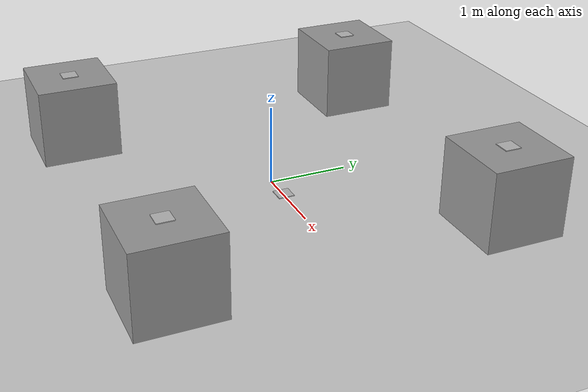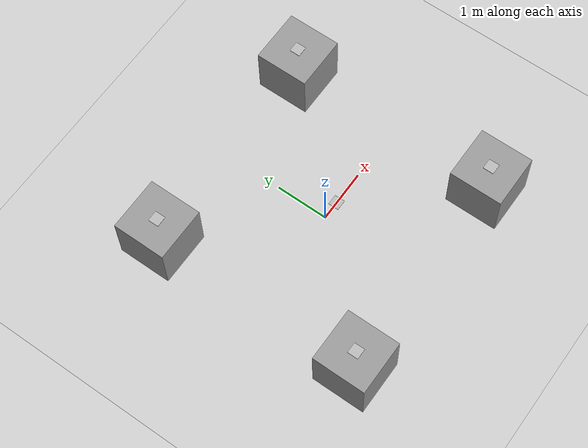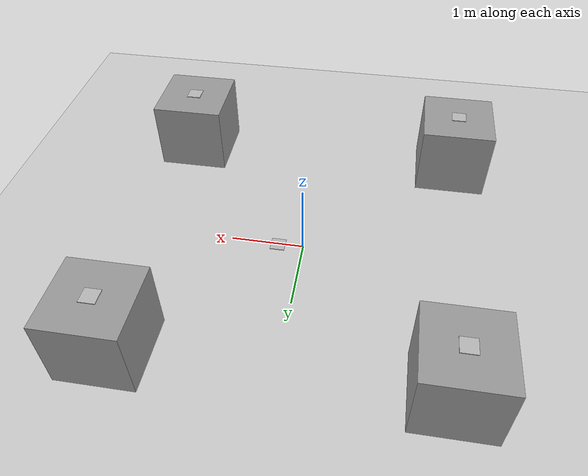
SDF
<sdf version="1.6">
 <world name="default">
  <light name="sun" type="directional">
   <pose>0 0 10 0 -0 0</pose>
   <diffuse>0.8 0.8 0.8 1</diffuse>
   <specular>0.1 0.1 0.1 1</specular>
   <attenuation>
    <range>1000</range>
    <constant>0.9</constant>
    <linear>0.01</linear>
    <quadratic>0.001</quadratic>
   </attenuation>
   <direction>-0.5 0.5 -1</direction>
  </light>
  <model name="ground_plane">
   <static>1</static>
   <link name="link">
    <collision name="collision">
     <geometry><plane><normal>0 0 1</normal><size>100 100</size></plane></geometry>
     <surface><friction><ode><mu>100</mu><mu2>50</mu2></ode></friction></surface>
    </collision>
    <visual name="visual">
     <cast_shadows>0</cast_shadows>
     <geometry><plane><normal>0 0 1</normal><size>100 100</size></plane></geometry>
     <material>
      <script><uri>file://media/materials/scripts/gazebo.material</uri><name>Gazebo/Grey</name></script>
     </material>
    </visual>
   </link>
  </model>
  <gravity>0 0 -9.8</gravity>
  <magnetic_field>6e-06 2.3e-05 -4.2e-05</magnetic_field>
  <atmosphere type="adiabatic"/>
  <physics name="default_physics" default="0" type="ode">
   <max_step_size>0.001</max_step_size>
   <real_time_factor>1</real_time_factor>
   <real_time_update_rate>1000</real_time_update_rate>
  </physics>
  <scene><ambient>0.4 0.4 0.4 1</ambient><background>0.7 0.7 0.7 1</background><shadows>1</shadows></scene>
  <spherical_coordinates>
   <surface_model>EARTH_WGS84</surface_model>
   <latitude_deg>0</latitude_deg>
   <longitude_deg>0</longitude_deg>
   <elevation>0</elevation>
   <heading_deg>0</heading_deg>
  </spherical_coordinates>
  <model name="unit_box_0">
   <pose>2 1.99999 0.499995 0 1e-05 0</pose>
   <link name="link">
    <inertial>
     <mass>1</mass>
     <inertia>
      <ixx>0.166667</ixx>
      <ixy>0</ixy>
      <ixz>0</ixz>
      <iyy>0.166667</iyy>
      <iyz>0</iyz>
      <izz>0.166667</izz>
     </inertia>
    </inertial>
    <collision name="collision"><geometry><box><size>1 1 1</size></box></geometry></collision>
    <visual name="visual">
     <geometry><box><size>1 1 1</size></box></geometry>
     <material>
      <script><name>Gazebo/Grey</name><uri>file://media/materials/scripts/gazebo.material</uri></script>
     </material>
    </visual>
   </link>
  </model>
  <model name="unit_box_1">
   <pose>1.99999 -2 0.499995 1e-05 -0 0</pose>
   <link name="link">
    <inertial>
     <mass>1</mass>
     <inertia>
      <ixx>0.166667</ixx>
      <ixy>0</ixy>
      <ixz>0</ixz>
      <iyy>0.166667</iyy>
      <iyz>0</iyz>
      <izz>0.166667</izz>
     </inertia>
    </inertial>
    <collision name="collision"><geometry><box><size>1 1 1</size></box></geometry></collision>
    <visual name="visual">
     <geometry><box><size>1 1 1</size></box></geometry>
     <material>
      <script><name>Gazebo/Grey</name><uri>file://media/materials/scripts/gazebo.material</uri></script>
     </material>
    </visual>
   </link>
  </model>
  <model name="unit_box_2">
   <pose>-1.99999 -1.99999 0.499995 0 1e-05 0</pose>
   <link name="link">
    <inertial>
     <mass>1</mass>
     <inertia>
      <ixx>0.166667</ixx>
      <ixy>0</ixy>
      <ixz>0</ixz>
      <iyy>0.166667</iyy>
      <iyz>0</iyz>
      <izz>0.166667</izz>
     </inertia>
    </inertial>
    <collision name="collision"><geometry><box><size>1 1 1</size></box></geometry></collision>
    <visual name="visual">
     <geometry><box><size>1 1 1</size></box></geometry>
     <material>
      <script><name>Gazebo/Grey</name><uri>file://media/materials/scripts/gazebo.material</uri></script>
     </material>
    </visual>
   </link>
  </model>
  <model name="unit_box_3">
   <pose>-2 1.99999 0.5 0 -0 0</pose>
   <link name="link">
    <inertial>
     <mass>1</mass>
     <inertia>
      <ixx>0.166667</ixx>
      <ixy>0</ixy>
      <ixz>0</ixz>
      <iyy>0.166667</iyy>
      <iyz>0</iyz>
      <izz>0.166667</izz>
     </inertia>
    </inertial>
    <collision name="collision"><geometry><box><size>1 1 1</size></box></geometry></collision>
    <visual name="visual">
     <geometry><box><size>1 1 1</size></box></geometry>
     <material>
      <script><name>Gazebo/Grey</name><uri>file://media/materials/scripts/gazebo.material</uri></script>
     </material>
    </visual>
   </link>
  </model>
  <model name="APtag0">
   <pose>0.349297 0.010571 0.005 0 -0 0</pose>
   <link name="box">
    <collision name="collision"><geometry><box><size>0.2 0.2 0.02</size></box></geometry></collision>
    <visual name="visual">
     <geometry><box><size>0.2 0.2 0.01</size></box></geometry>
     <material>
      <script>
       <uri>model://APtag0/materials/scripts</uri>
       <uri>model://APtag0/materials/textures</uri>
       <name>APtag0/tag0</name>
      </script>
     </material>
    </visual>
    <inertial>
     <inertia><ixx>1</ixx><ixy>0</ixy><ixz>0</ixz><iyy>1</iyy><iyz>0</iyz><izz>1</izz></inertia>
     <mass>1</mass>
    </inertial>
   </link>
  </model>
  <model name="APtag0_0">
   <pose>2 2 1.005 0 -0 0</pose>
   <link name="box">
    <collision name="collision"><geometry><box><size>0.2 0.2 0.02</size></box></geometry></collision>
    <visual name="visual">
     <geometry><box><size>0.2 0.2 0.01</size></box></geometry>
     <material>
      <script>
       <uri>model://APtag0/materials/scripts</uri>
       <uri>model://APtag0/materials/textures</uri>
       <name>APtag0/tag0</name>
      </script>
     </material>
    </visual>
    <inertial>
     <inertia><ixx>1</ixx><ixy>0</ixy><ixz>0</ixz><iyy>1</iyy><iyz>0</iyz><izz>1</izz></inertia>
     <mass>1</mass>
    </inertial>
   </link>
  </model>
  <model name="APtag1_0">
   <pose>2 -2 1.005 0 -0 0</pose>
   <link name="box">
    <collision name="collision"><geometry><box><size>0.2 0.2 0.02</size></box></geometry></collision>
    <visual name="visual">
     <geometry><box><size>0.2 0.2 0.01</size></box></geometry>
     <material>
      <script>
       <uri>model://APtag1/materials/scripts</uri>
       <uri>model://APtag1/materials/textures</uri>
       <name>APtag1/tag1</name>
      </script>
     </material>
    </visual>
    <inertial>
     <inertia><ixx>1</ixx><ixy>0</ixy><ixz>0</ixz><iyy>1</iyy><iyz>0</iyz><izz>1</izz></inertia>
     <mass>1</mass>
    </inertial>
   </link>
  </model>
  <model name="APtag2_0">
   <pose>-2 -2 1.005 0 -0 0</pose>
   <link name="box">
    <collision name="collision"><geometry><box><size>0.2 0.2 0.02</size></box></geometry></collision>
    <visual name="visual">
     <geometry><box><size>0.2 0.2 0.01</size></box></geometry>
     <material>
      <script>
       <uri>model://APtag2/materials/scripts</uri>
       <uri>model://APtag2/materials/textures</uri>
       <name>APtag2/tag2</name>
      </script>
     </material>
    </visual>
    <inertial>
     <inertia><ixx>1</ixx><ixy>0</ixy><ixz>0</ixz><iyy>1</iyy><iyz>0</iyz><izz>1</izz></inertia>
     <mass>1</mass>
    </inertial>
   </link>
  </model>
  <model name="APtag1_1">
   <pose>-2 2 1.005 0 -0 0</pose>
   <link name="box">
    <collision name="collision"><geometry><box><size>0.2 0.2 0.02</size></box></geometry></collision>
    <visual name="visual">
     <geometry><box><size>0.2 0.2 0.01</size></box></geometry>
     <material>
      <script>
       <uri>model://APtag1/materials/scripts</uri>
       <uri>model://APtag1/materials/textures</uri>
       <name>APtag1/tag1</name>
      </script>
     </material>
    </visual>
    <inertial>
     <inertia><ixx>1</ixx><ixy>0</ixy><ixz>0</ixz><iyy>1</iyy><iyz>0</iyz><izz>1</izz></inertia>
     <mass>1</mass>
    </inertial>
   </link>
  </model>
 </world>
</sdf>
